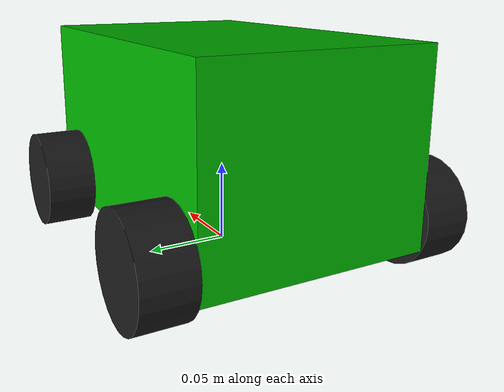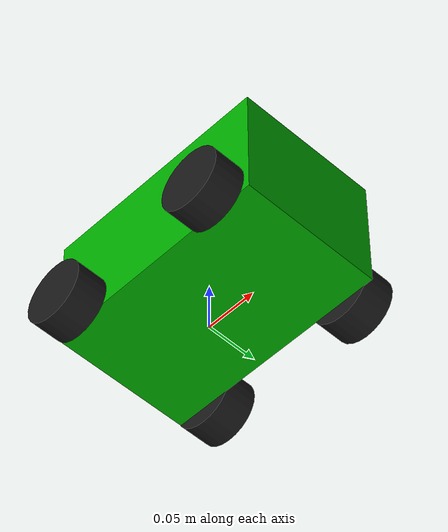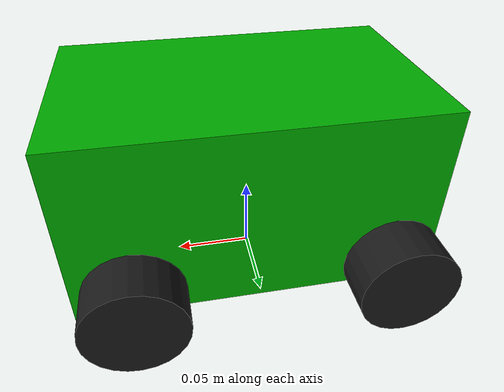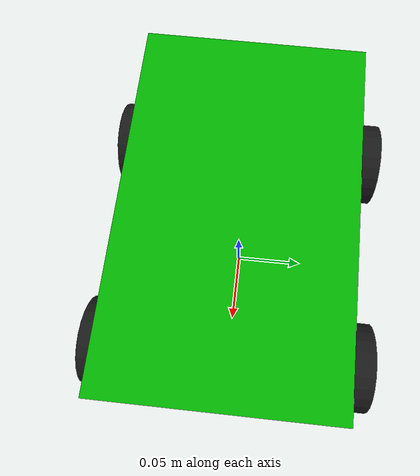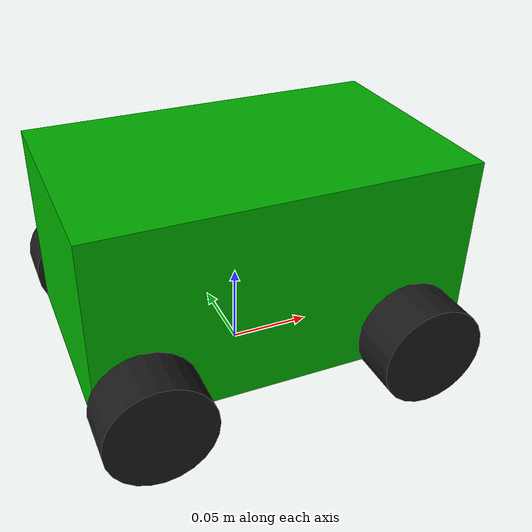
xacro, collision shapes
<?xml version = '1.0'?>
<robot xmlns:xacro = 'http://www.ros.org/wiki/xacro'>
    <!-- PROPERTIES -->
    <xacro:property name = 'a' value = '1'/>    <!--scalar used for inertia -->
    <xacro:property name = 'd' value = '0.5'/>  <!--scalar used for damping -->

    <material name = 'black'>
        <color rgba = '0.1 0.1 0.1 1'/>
    </material>

    <material name = 'green'>
        <color rgba = '0 0.7 0 1'/>
    </material>

    <material name = 'gray'>
        <color rgba = '0.83 0.83 0.83 1'/>
    </material>

    <!-- MACROS -->
    <xacro:macro name = 'cylinder_inertia' params = 'mass radius length'>
        <inertia
            ixx = '${a * mass * (3 * radius**2 + length**2) / 12}'
            ixy = '0'
            ixz = '0'
            iyy = '${a * mass * (3 * radius**2 + length**2) / 12}'
            iyz = '0'
            izz = '${a * mass * radius**2 / 12}'
        />
    </xacro:macro>

    <xacro:macro name = 'box_inertia' params = 'mass w h d'>
        <inertia
            ixx = '${a * mass * (h**2 + d**2) / 12}'
            ixy = '0'
            ixz = '0'
            iyy = '${a * mass * (w**2 + h**2) / 12}'
            iyz = '0'
            izz = '${a * mass * (w**2 + d**2) / 12}'
        />
    </xacro:macro>

    <!-- BASE LINK & CHASSIS LINK -->
    <!-- base link -->
    <link name = 'base_link'>
    </link>

    <!-- chassis link -->
    <link name = 'chassis_link'>
        <visual>
            <origin xyz = '0 0 0' rpy = '0 0 0'/>
            <geometry>
                <mesh filename = 'file://$(find sim_robot_description)/meshes/chassis.STL'/>
            </geometry>
            <material name = 'green'/>
        </visual>

        <collision>
            <origin xyz = '0.00475 0 0.004' rpy = '0 0 0'/>   <!-- collision box moved to match visual -->
            <geometry>
                <box size = '0.2235 0.139 0.1165'/>
            </geometry>
        </collision>

        <inertial>
            <mass value = '2.415'/>
            <xacro:box_inertia
                mass = '2.415'
                w = '0.2235'
                h = '0.1165'
                d = '0.139'
            />
        </inertial>
    </link>

    <!-- chassis to base joint -->
    <joint name = 'base_joint' type = 'fixed'>
        <parent link = 'base_link'/>
        <child link = 'chassis_link'/>
        <origin xyz = '0 0 0.07115' rpy = '0 0 0'/> <!-- origin offset of 0.07115 -->
    </joint>

    <!-- WHEEL LINKS & JOINTS -->
    <!-- front right wheel link -->
    <link name = 'front_right_wheel_link'>
        <visual>
            <origin xyz = '0 0 0' rpy = '0 0 0'/>
            <geometry>
                <mesh filename = 'file://$(find sim_robot_description)/meshes/front_right_wheel.STL'/>
            </geometry>
            <material name = 'black'/>
        </visual>

        <collision>
            <origin xyz = '0 0 0' rpy = '0 0 0'/>
            <geometry>
                <cylinder radius = '0.03115' length = '0.03035'/>
            </geometry>
        </collision>

        <inertial>
            <mass value = '0.0575175'/>
            <xacro:cylinder_inertia
                mass = '0.0575175'
                radius = '0.03115'
                length = '0.03035'
            />
        </inertial>
    </link>

    <!-- front right wheel to chassis joint -->
    <joint name = 'front_right_joint' type = 'continuous'>
        <origin xyz = '0.08 -0.0845 -0.0389' rpy = '-1.5703 0 3.14159'/>
        <parent link = 'chassis_link'/>
        <child link = 'front_right_wheel_link'/>
        <axis xyz = '0 0 -1' rpy = '0 0 0'/>
        <dynamics damping = '${d}'/>
    </joint>

    <!-- front left wheel link -->
    <link name = 'front_left_wheel_link'>
        <visual>
            <origin xyz = '0 0 0' rpy = '0 0 0'/>
            <geometry>
                <mesh filename = 'file://$(find sim_robot_description)/meshes/front_left_wheel.STL'/>
            </geometry>
            <material name = 'black'/>
        </visual>

        <collision>
            <origin xyz = '0 0 0' rpy = '0 0 0'/>
            <geometry>
                <cylinder radius = '0.03115' length = '0.03035'/>
            </geometry>
        </collision>

        <inertial>
            <mass value = '0.0575175'/>
            <xacro:cylinder_inertia
                mass = '0.0575175'
                radius = '0.03115'
                length = '0.03035'
            />
        </inertial>
    </link>

    <!-- front left wheel to chassis joint -->
    <joint name = 'front_left_joint' type = 'continuous'>
        <origin xyz = '0.08 0.084492 -0.0389' rpy = '1.5703 0 0'/>
        <parent link = 'chassis_link'/>
        <child link = 'front_left_wheel_link'/>
        <axis xyz = '0 0 -1' rpy = '0 0 0'/>
        <dynamics damping = '${d}'/>
    </joint>

    <!-- back right wheel link -->
    <link name = 'back_right_wheel_link'>
        <visual>
            <origin xyz = '0 0 0' rpy = '0 0 0'/>
            <geometry>
                <mesh filename = 'file://$(find sim_robot_description)/meshes/back_right_wheel.STL'/>
            </geometry>
            <material name = 'black'/>
        </visual>

        <collision>
            <origin xyz = '0 0 0' rpy = '0 0 0'/>
            <geometry>
                <cylinder radius = '0.03115' length = '0.03035'/>
            </geometry>
        </collision>

        <inertial>
            <mass value = '0.0575175'/>
            <xacro:cylinder_inertia
                mass = '0.0575175'
                radius = '0.03115'
                length = '0.03035'
            />
        </inertial>
    </link>

    <!-- back right wheel to chassis joint -->
    <joint name = 'back_right_joint' type = 'continuous'>
        <origin xyz = '-0.08 -0.0845 -0.03946' rpy = '-1.57 0 3.14159'/>
        <parent link = 'chassis_link'/>
        <child link = 'back_right_wheel_link'/>
        <axis xyz = '0 0 -1' rpy = '0 0 0'/>
        <dynamics damping = '${d}'/>
    </joint>

    <!-- back left wheel link -->
    <link name = 'back_left_wheel_link'>
        <visual>
            <origin xyz = '0 0 0' rpy = '0 0 0'/>
            <geometry>
                <mesh filename = 'file://$(find sim_robot_description)/meshes/back_left_wheel.STL'/>
            </geometry>
            <material name = 'black'/>
        </visual>

        <collision>
            <origin xyz = '0 0 0' rpy = '0 0 0'/>
            <geometry>
                <cylinder radius = '0.03115' length = '0.03035'/>
            </geometry>
        </collision>

        <inertial>
            <mass value = '0.0575175'/>
            <xacro:cylinder_inertia
                mass = '0.0575175'
                radius = '0.03115'
                length = '0.03035'
            />
        </inertial>
    </link>

    <!-- back left wheel to chassis joint -->
    <joint name = 'back_left_joint' type = 'continuous'>
        <origin xyz = '-0.08 0.084492 -0.03954' rpy = '1.5703 0 0'/>
        <parent link = 'chassis_link'/>
        <child link = 'back_left_wheel_link'/>
        <axis xyz = '0 0 -1' rpy = '0 0 0'/>
        <dynamics damping = '${d}'/>
    </joint>
</robot>
